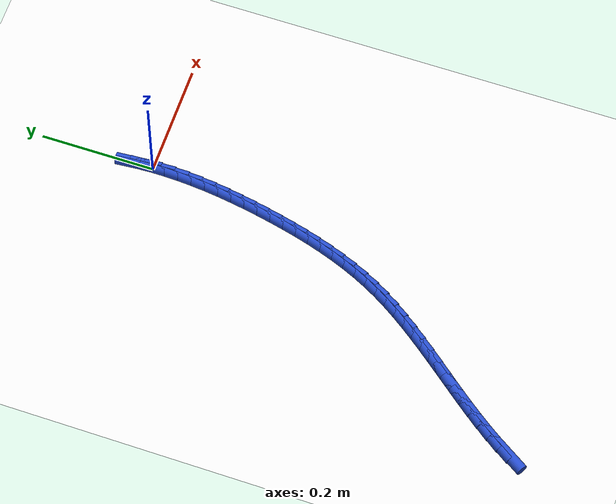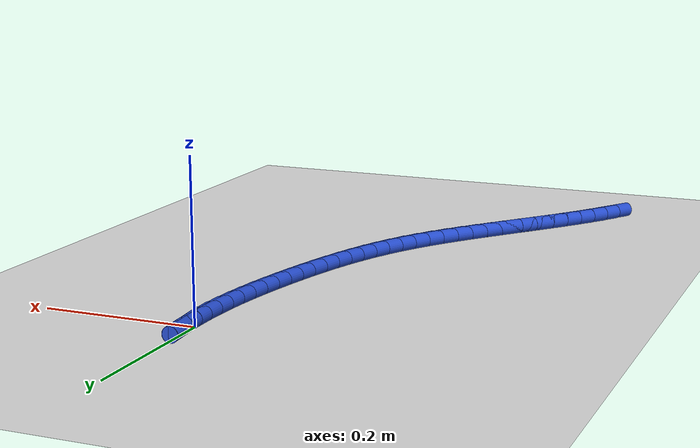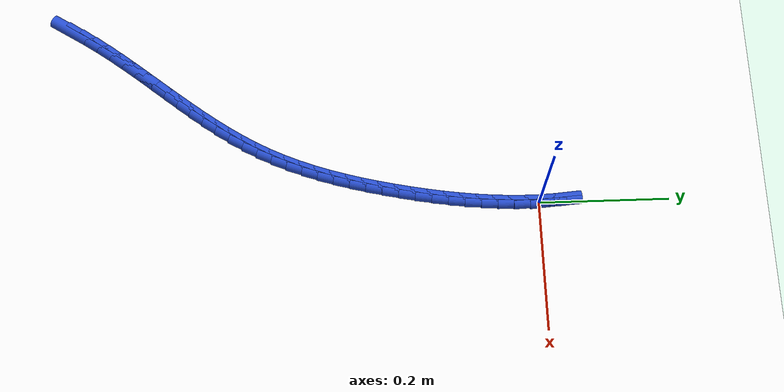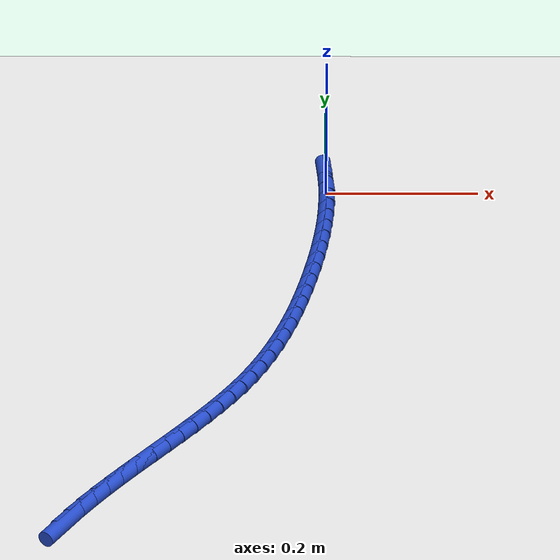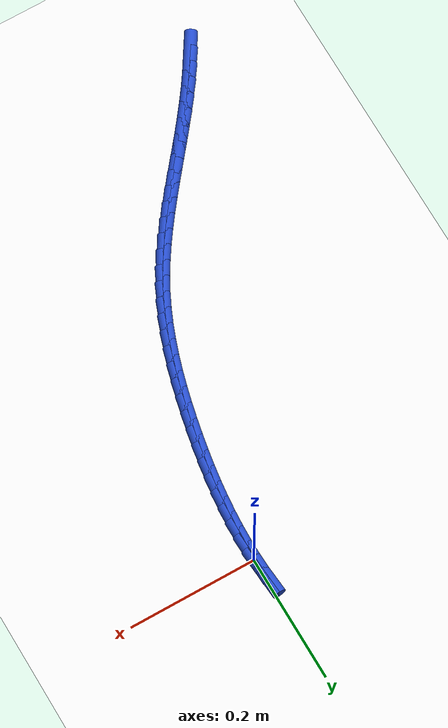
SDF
<sdf version="1.6">
 <world name="default">
  <model name="ground_plane">
   <static>1</static>
   <link name="link">
    <collision name="collision">
     <geometry><plane><normal>0 0 1</normal><size>100 100</size></plane></geometry>
     <surface><friction><ode><mu>100</mu><mu2>50</mu2></ode></friction></surface>
    </collision>
    <visual name="visual">
     <cast_shadows>0</cast_shadows>
     <geometry><plane><normal>0 0 1</normal><size>100 100</size></plane></geometry>
     <material>
      <script><uri>file://media/materials/scripts/gazebo.material</uri><name>Gazebo/WhiteGlow</name></script>
     </material>
    </visual>
   </link>
  </model>
  <model name="line">
   <link name="link_0">
    <pose>7.806255641895632e-18 -2.7755575615628914e-17 0.01 0 1.57 -1.5297292632411528</pose>
    <collision name="collision">
     <geometry><cylinder><radius>0.01</radius><length>0.08</length></cylinder></geometry>
    </collision>
    <visual name="visual">
     <material>
      <script><name>Gazebo/Blue</name><uri>file://media/materials/scripts/gazebo.material</uri></script>
     </material>
     <geometry><cylinder><radius>0.01</radius><length>0.08</length></cylinder></geometry>
    </visual>
   </link>
   <link name="link_1">
    <pose>-0.0010044196598593667 0.02444428349632678 0.01 0 1.57 -1.4977805838000642</pose>
    <collision name="collision">
     <geometry><cylinder><radius>0.01</radius><length>0.08</length></cylinder></geometry>
    </collision>
    <visual name="visual">
     <material>
      <script><name>Gazebo/Blue</name><uri>file://media/materials/scripts/gazebo.material</uri></script>
     </material>
     <geometry><cylinder><radius>0.01</radius><length>0.08</length></cylinder></geometry>
    </visual>
   </link>
   <link name="link_258">
    <pose>-0.3089144750647377 -0.7198518601284873 0.01 0 1.57 1.0045183462921734</pose>
    <collision name="collision">
     <geometry><cylinder><radius>0.01</radius><length>0.08</length></cylinder></geometry>
    </collision>
    <visual name="visual">
     <material>
      <script><name>Gazebo/Blue</name><uri>file://media/materials/scripts/gazebo.material</uri></script>
     </material>
     <geometry><cylinder><radius>0.01</radius><length>0.08</length></cylinder></geometry>
    </visual>
   </link>
   <link name="link_259">
    <pose>-0.2954246906911838 -0.6986324940786836 0.01 0 1.57 0.9713281501577833</pose>
    <collision name="collision">
     <geometry><cylinder><radius>0.01</radius><length>0.08</length></cylinder></geometry>
    </collision>
    <visual name="visual">
     <material>
      <script><name>Gazebo/Blue</name><uri>file://media/materials/scripts/gazebo.material</uri></script>
     </material>
     <geometry><cylinder><radius>0.01</radius><length>0.08</length></cylinder></geometry>
    </visual>
   </link>
   <link name="link_260">
    <pose>-0.28122742530638056 -0.6778567080171894 0.01 0 1.57 0.9435808786286802</pose>
    <collision name="collision">
     <geometry><cylinder><radius>0.01</radius><length>0.08</length></cylinder></geometry>
    </collision>
    <visual name="visual">
     <material>
      <script><name>Gazebo/Blue</name><uri>file://media/materials/scripts/gazebo.material</uri></script>
     </material>
     <geometry><cylinder><radius>0.01</radius><length>0.08</length></cylinder></geometry>
    </visual>
   </link>
   <link name="link_261">
    <pose>-0.2664397639699113 -0.6574559525674986 0.01 0 1.57 0.9217764782774658</pose>
    <collision name="collision">
     <geometry><cylinder><radius>0.01</radius><length>0.08</length></cylinder></geometry>
    </collision>
    <visual name="visual">
     <material>
      <script><name>Gazebo/Blue</name><uri>file://media/materials/scripts/gazebo.material</uri></script>
     </material>
     <geometry><cylinder><radius>0.01</radius><length>0.08</length></cylinder></geometry>
    </visual>
   </link>
   <link name="link_262">
    <pose>-0.251189850554684 -0.6373548079863351 0.01 0 1.57 0.9058726386489426</pose>
    <collision name="collision">
     <geometry><cylinder><radius>0.01</radius><length>0.08</length></cylinder></geometry>
    </collision>
    <visual name="visual">
     <material>
      <script><name>Gazebo/Blue</name><uri>file://media/materials/scripts/gazebo.material</uri></script>
     </material>
     <geometry><cylinder><radius>0.01</radius><length>0.08</length></cylinder></geometry>
    </visual>
   </link>
   <link name="link_263">
    <pose>-0.235605828933606 -0.6174778545304225 0.01 0 1.57 0.8958254632036039</pose>
    <collision name="collision">
     <geometry><cylinder><radius>0.01</radius><length>0.08</length></cylinder></geometry>
    </collision>
    <visual name="visual">
     <material>
      <script><name>Gazebo/Blue</name><uri>file://media/materials/scripts/gazebo.material</uri></script>
     </material>
     <geometry><cylinder><radius>0.01</radius><length>0.08</length></cylinder></geometry>
    </visual>
   </link>
   <link name="link_264">
    <pose>-0.21981584297958467 -0.5977496724564837 0.01 0 1.57 0.8916057638830668</pose>
    <collision name="collision">
     <geometry><cylinder><radius>0.01</radius><length>0.08</length></cylinder></geometry>
    </collision>
    <visual name="visual">
     <material>
      <script><name>Gazebo/Blue</name><uri>file://media/materials/scripts/gazebo.material</uri></script>
     </material>
     <geometry><cylinder><radius>0.01</radius><length>0.08</length></cylinder></geometry>
    </visual>
   </link>
   <link name="link_265">
    <pose>-0.2039480365655283 -0.5780948420212434 0.01 0 1.57 0.8932091635172174</pose>
    <collision name="collision">
     <geometry><cylinder><radius>0.01</radius><length>0.08</length></cylinder></geometry>
    </collision>
    <visual name="visual">
     <material>
      <script><name>Gazebo/Blue</name><uri>file://media/materials/scripts/gazebo.material</uri></script>
     </material>
     <geometry><cylinder><radius>0.01</radius><length>0.08</length></cylinder></geometry>
    </visual>
   </link>
   <link name="link_266">
    <pose>-0.18813055356434324 -0.5584379434814235 0.01 0 1.57 0.9006604268050634</pose>
    <collision name="collision">
     <geometry><cylinder><radius>0.01</radius><length>0.08</length></cylinder></geometry>
    </collision>
    <visual name="visual">
     <material>
      <script><name>Gazebo/Blue</name><uri>file://media/materials/scripts/gazebo.material</uri></script>
     </material>
     <geometry><cylinder><radius>0.01</radius><length>0.08</length></cylinder></geometry>
    </visual>
   </link>
   <link name="link_267">
    <pose>-0.17249153784893756 -0.5387035570937481 0.01 0 1.57 0.9140121740997479</pose>
    <collision name="collision">
     <geometry><cylinder><radius>0.01</radius><length>0.08</length></cylinder></geometry>
    </collision>
    <visual name="visual">
     <material>
      <script><name>Gazebo/Blue</name><uri>file://media/materials/scripts/gazebo.material</uri></script>
     </material>
     <geometry><cylinder><radius>0.01</radius><length>0.08</length></cylinder></geometry>
    </visual>
   </link>
   <link name="link_268">
    <pose>-0.15715913329221884 -0.5188162631149409 0.01 0 1.57 0.9333377573597909</pose>
    <collision name="collision">
     <geometry><cylinder><radius>0.01</radius><length>0.08</length></cylinder></geometry>
    </collision>
    <visual name="visual">
     <material>
      <script><name>Gazebo/Blue</name><uri>file://media/materials/scripts/gazebo.material</uri></script>
     </material>
     <geometry><cylinder><radius>0.01</radius><length>0.08</length></cylinder></geometry>
    </visual>
   </link>
   <link name="link_269">
    <pose>-0.14226148376709455 -0.4987006418017252 0.01 0 1.57 0.9587177277431811</pose>
    <collision name="collision">
     <geometry><cylinder><radius>0.01</radius><length>0.08</length></cylinder></geometry>
    </collision>
    <visual name="visual">
     <material>
      <script><name>Gazebo/Blue</name><uri>file://media/materials/scripts/gazebo.material</uri></script>
     </material>
     <geometry><cylinder><radius>0.01</radius><length>0.08</length></cylinder></geometry>
    </visual>
   </link>
   <link name="link_270">
    <pose>-0.1279267331464722 -0.47828127341082455 0.01 0 1.57 0.9902191494294147</pose>
    <collision name="collision">
     <geometry><cylinder><radius>0.01</radius><length>0.08</length></cylinder></geometry>
    </collision>
    <visual name="visual">
     <material>
      <script><name>Gazebo/Blue</name><uri>file://media/materials/scripts/gazebo.material</uri></script>
     </material>
     <geometry><cylinder><radius>0.01</radius><length>0.08</length></cylinder></geometry>
    </visual>
   </link>
   <link name="link_271">
    <pose>-0.1142830253032594 -0.45748273819896246 0.01 0 1.57 1.0278672096222508</pose>
    <collision name="collision">
     <geometry><cylinder><radius>0.01</radius><length>0.08</length></cylinder></geometry>
    </collision>
    <visual name="visual">
     <material>
      <script><name>Gazebo/Blue</name><uri>file://media/materials/scripts/gazebo.material</uri></script>
     </material>
     <geometry><cylinder><radius>0.01</radius><length>0.08</length></cylinder></geometry>
    </visual>
   </link>
   <link name="link_272">
    <pose>-0.10145850411036361 -0.43622961642286245 0.01 0 1.57 1.0715851703162356</pose>
    <collision name="collision">
     <geometry><cylinder><radius>0.01</radius><length>0.08</length></cylinder></geometry>
    </collision>
    <visual name="visual">
     <material>
      <script><name>Gazebo/Blue</name><uri>file://media/materials/scripts/gazebo.material</uri></script>
     </material>
     <geometry><cylinder><radius>0.01</radius><length>0.08</length></cylinder></geometry>
    </visual>
   </link>
   <link name="link_273">
    <pose>-0.08958081002055937 -0.4144468199093232 0.01 0 1.57 1.1182159706815937</pose>
    <collision name="collision">
     <geometry><cylinder><radius>0.01</radius><length>0.08</length></cylinder></geometry>
    </collision>
    <visual name="visual">
     <material>
      <script><name>Gazebo/Blue</name><uri>file://media/materials/scripts/gazebo.material</uri></script>
     </material>
     <geometry><cylinder><radius>0.01</radius><length>0.08</length></cylinder></geometry>
    </visual>
   </link>
   <link name="link_274">
    <pose>-0.07871506976905224 -0.3921004342020756 0.01 0 1.57 1.1617600360974367</pose>
    <collision name="collision">
     <geometry><cylinder><radius>0.01</radius><length>0.08</length></cylinder></geometry>
    </collision>
    <visual name="visual">
     <material>
      <script><name>Gazebo/Blue</name><uri>file://media/materials/scripts/gazebo.material</uri></script>
     </material>
     <geometry><cylinder><radius>0.01</radius><length>0.08</length></cylinder></geometry>
    </visual>
   </link>
   <link name="link_275">
    <pose>-0.06880412899727613 -0.3692370834424061 0.01 0 1.57 1.201511757447052</pose>
    <collision name="collision">
     <geometry><cylinder><radius>0.01</radius><length>0.08</length></cylinder></geometry>
    </collision>
    <visual name="visual">
     <material>
      <script><name>Gazebo/Blue</name><uri>file://media/materials/scripts/gazebo.material</uri></script>
     </material>
     <geometry><cylinder><radius>0.01</radius><length>0.08</length></cylinder></geometry>
    </visual>
   </link>
   <link name="link_276">
    <pose>-0.059776661821944084 -0.34591272563255265 0.01 0 1.57 1.23750332952335</pose>
    <collision name="collision">
     <geometry><cylinder><radius>0.01</radius><length>0.08</length></cylinder></geometry>
    </collision>
    <visual name="visual">
     <material>
      <script><name>Gazebo/Blue</name><uri>file://media/materials/scripts/gazebo.material</uri></script>
     </material>
     <geometry><cylinder><radius>0.01</radius><length>0.08</length></cylinder></geometry>
    </visual>
   </link>
   <link name="link_277">
    <pose>-0.05156134235976907 -0.3221833187747535 0.01 0 1.57 1.2698056196731948</pose>
    <collision name="collision">
     <geometry><cylinder><radius>0.01</radius><length>0.08</length></cylinder></geometry>
    </collision>
    <visual name="visual">
     <material>
      <script><name>Gazebo/Blue</name><uri>file://media/materials/scripts/gazebo.material</uri></script>
     </material>
     <geometry><cylinder><radius>0.01</radius><length>0.08</length></cylinder></geometry>
    </visual>
   </link>
   <link name="link_278">
    <pose>-0.04408684472746413 -0.29810482087124646 0.01 0 1.57 1.2985127808154606</pose>
    <collision name="collision">
     <geometry><cylinder><radius>0.01</radius><length>0.08</length></cylinder></geometry>
    </collision>
    <visual name="visual">
     <material>
      <script><name>Gazebo/Blue</name><uri>file://media/materials/scripts/gazebo.material</uri></script>
     </material>
     <geometry><cylinder><radius>0.01</radius><length>0.08</length></cylinder></geometry>
    </visual>
   </link>
   <link name="link_279">
    <pose>-0.037281843041742244 -0.27373318992426976 0.01 0 1.57 1.3237294001811488</pose>
    <collision name="collision">
     <geometry><cylinder><radius>0.01</radius><length>0.08</length></cylinder></geometry>
    </collision>
    <visual name="visual">
     <material>
      <script><name>Gazebo/Blue</name><uri>file://media/materials/scripts/gazebo.material</uri></script>
     </material>
     <geometry><cylinder><radius>0.01</radius><length>0.08</length></cylinder></geometry>
    </visual>
   </link>
   <link name="link_280">
    <pose>-0.03107501141931663 -0.2491243839360623 0.01 0 1.57 1.3455601544348144</pose>
    <collision name="collision">
     <geometry><cylinder><radius>0.01</radius><length>0.08</length></cylinder></geometry>
    </collision>
    <visual name="visual">
     <material>
      <script><name>Gazebo/Blue</name><uri>file://media/materials/scripts/gazebo.material</uri></script>
     </material>
     <geometry><cylinder><radius>0.01</radius><length>0.08</length></cylinder></geometry>
    </visual>
   </link>
   <link name="link_281">
    <pose>-0.025395023976899883 -0.22433436090886033 0.01 0 1.57 1.364309212853929</pose>
    <collision name="collision">
     <geometry><cylinder><radius>0.01</radius><length>0.08</length></cylinder></geometry>
    </collision>
    <visual name="visual">
     <material>
      <script><name>Gazebo/Blue</name><uri>file://media/materials/scripts/gazebo.material</uri></script>
     </material>
     <geometry><cylinder><radius>0.01</radius><length>0.08</length></cylinder></geometry>
    </visual>
   </link>
   <link name="link_282">
    <pose>-0.02017577007325621 -0.19941820780321737 0.01 0 1.57 1.3828934438390494</pose>
    <collision name="collision">
     <geometry><cylinder><radius>0.01</radius><length>0.08</length></cylinder></geometry>
    </collision>
    <visual name="visual">
     <material>
      <script><name>Gazebo/Blue</name><uri>file://media/materials/scripts/gazebo.material</uri></script>
     </material>
     <geometry><cylinder><radius>0.01</radius><length>0.08</length></cylinder></geometry>
    </visual>
   </link>
   <link name="link_283">
    <pose>-0.015422294218590035 -0.17441912735601287 0.01 0 1.57 1.403448653798582</pose>
    <collision name="collision">
     <geometry><cylinder><radius>0.01</radius><length>0.08</length></cylinder></geometry>
    </collision>
    <visual name="visual">
     <material>
      <script><name>Gazebo/Blue</name><uri>file://media/materials/scripts/gazebo.material</uri></script>
     </material>
     <geometry><cylinder><radius>0.01</radius><length>0.08</length></cylinder></geometry>
    </visual>
   </link>
   <link name="link_284">
    <pose>-0.011191097728515089 -0.14937172806783258 0.01 0 1.57 1.4261206827107356</pose>
    <collision name="collision">
     <geometry><cylinder><radius>0.01</radius><length>0.08</length></cylinder></geometry>
    </collision>
    <visual name="visual">
     <material>
      <script><name>Gazebo/Blue</name><uri>file://media/materials/scripts/gazebo.material</uri></script>
     </material>
     <geometry><cylinder><radius>0.01</radius><length>0.08</length></cylinder></geometry>
    </visual>
   </link>
   <link name="link_285">
    <pose>-0.007539827291522777 -0.1243104271408504 0.01 0 1.57 1.45102084134311</pose>
    <collision name="collision">
     <geometry><cylinder><radius>0.01</radius><length>0.08</length></cylinder></geometry>
    </collision>
    <visual name="visual">
     <material>
      <script><name>Gazebo/Blue</name><uri>file://media/materials/scripts/gazebo.material</uri></script>
     </material>
     <geometry><cylinder><radius>0.01</radius><length>0.08</length></cylinder></geometry>
    </visual>
   </link>
   <link name="link_286">
    <pose>-0.0045261295961045115 -0.09926964177724035 0.01 0 1.57 1.478269639238353</pose>
    <collision name="collision">
     <geometry><cylinder><radius>0.01</radius><length>0.08</length></cylinder></geometry>
    </collision>
    <visual name="visual">
     <material>
      <script><name>Gazebo/Blue</name><uri>file://media/materials/scripts/gazebo.material</uri></script>
     </material>
     <geometry><cylinder><radius>0.01</radius><length>0.08</length></cylinder></geometry>
    </visual>
   </link>
   <link name="link_287">
    <pose>-0.0022076513307516922 -0.07428378917917636 0.01 0 1.57 1.5079942009443175</pose>
    <collision name="collision">
     <geometry><cylinder><radius>0.01</radius><length>0.08</length></cylinder></geometry>
    </collision>
    <visual name="visual">
     <material>
      <script><name>Gazebo/Blue</name><uri>file://media/materials/scripts/gazebo.material</uri></script>
     </material>
     <geometry><cylinder><radius>0.01</radius><length>0.08</length></cylinder></geometry>
    </visual>
   </link>
   <link name="link_288">
    <pose>-0.0006420391839557288 -0.04938728654883231 0.01 0 1.57 1.5403246972829505</pose>
    <collision name="collision">
     <geometry><cylinder><radius>0.01</radius><length>0.08</length></cylinder></geometry>
    </collision>
    <visual name="visual">
     <material>
      <script><name>Gazebo/Blue</name><uri>file://media/materials/scripts/gazebo.material</uri></script>
     </material>
     <geometry><cylinder><radius>0.01</radius><length>0.08</length></cylinder></geometry>
    </visual>
   </link>
   <link name="link_289">
    <pose>0.00011306015579197167 -0.024614551088382224 0.01 0 1.57 -1.5662031347316892</pose>
    <collision name="collision">
     <geometry><cylinder><radius>0.01</radius><length>0.08</length></cylinder></geometry>
    </collision>
    <visual name="visual">
     <material>
      <script><name>Gazebo/Blue</name><uri>file://media/materials/scripts/gazebo.material</uri></script>
     </material>
     <geometry><cylinder><radius>0.01</radius><length>0.08</length></cylinder></geometry>
    </visual>
   </link>
   <link name="link_290">
    <pose>4.336808689942018e-18 -6.938893903907228e-18 0.01 0 1.57 -1.528283733401958</pose>
    <collision name="collision">
     <geometry><cylinder><radius>0.01</radius><length>0.08</length></cylinder></geometry>
    </collision>
    <visual name="visual">
     <material>
      <script><name>Gazebo/Blue</name><uri>file://media/materials/scripts/gazebo.material</uri></script>
     </material>
     <geometry><cylinder><radius>0.01</radius><length>0.08</length></cylinder></geometry>
    </visual>
   </link>
   <link name="link_291">
    <pose>-0.0010388663398229903 0.02442194951413963 0.01 0 1.57 -1.4874057467129125</pose>
    <collision name="collision">
     <geometry><cylinder><radius>0.01</radius><length>0.08</length></cylinder></geometry>
    </collision>
    <visual name="visual">
     <material>
      <script><name>Gazebo/Blue</name><uri>file://media/materials/scripts/gazebo.material</uri></script>
     </material>
     <geometry><cylinder><radius>0.01</radius><length>0.08</length></cylinder></geometry>
    </visual>
   </link>
  </model>
 </world>
</sdf>
